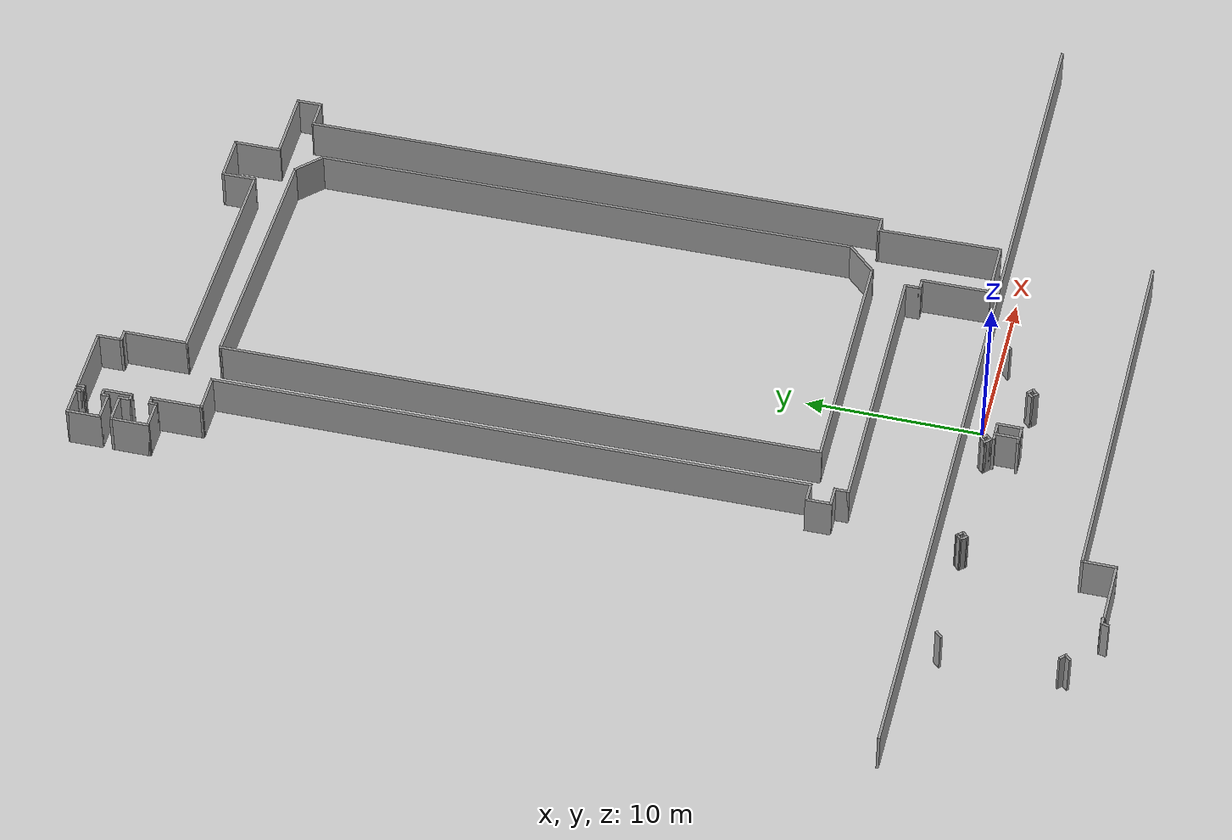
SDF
<sdf version="1.6">
 <world name="default">
  <model name="ground_plane">
   <static>1</static>
   <link name="link">
    <collision name="collision">
     <geometry><plane><normal>0 0 1</normal><size>100 100</size></plane></geometry>
     <surface><friction><ode><mu>100</mu><mu2>50</mu2></ode></friction></surface>
    </collision>
    <visual name="visual">
     <cast_shadows>0</cast_shadows>
     <geometry><plane><normal>0 0 1</normal><size>100 100</size></plane></geometry>
     <material>
      <script><uri>file://media/materials/scripts/gazebo.material</uri><name>Gazebo/Grey</name></script>
     </material>
    </visual>
   </link>
  </model>
  <model name="301_7f_1">
   <pose>1.02031 25.2413 0 0 0 -3.13556</pose>
   <link name="Wall_0">
    <collision name="Wall_0_Collision">
     <geometry><box><size>3.5 0.15 2.5</size></box></geometry>
     <pose>0 0 1.25 0 -0 0</pose>
    </collision>
    <visual name="Wall_0_Visual">
     <pose>0 0 1.25 0 -0 0</pose>
     <geometry><box><size>3.5 0.15 2.5</size></box></geometry>
     <material>
      <script><uri>file://media/materials/scripts/gazebo.material</uri><name>Gazebo/Grey</name></script>
      <ambient>1 1 1 1</ambient>
     </material>
     <meta><layer>0</layer></meta>
    </visual>
    <pose>-9.01493 23.8758 0 0 -0 0</pose>
   </link>
   <link name="Wall_1">
    <collision name="Wall_1_Collision">
     <geometry><box><size>4 0.15 2.5</size></box></geometry>
     <pose>0 0 1.25 0 -0 0</pose>
    </collision>
    <visual name="Wall_1_Visual">
     <pose>0 0 1.25 0 -0 0</pose>
     <geometry><box><size>4 0.15 2.5</size></box></geometry>
     <material>
      <script><uri>file://media/materials/scripts/gazebo.material</uri><name>Gazebo/Grey</name></script>
      <ambient>1 1 1 1</ambient>
     </material>
     <meta><layer>0</layer></meta>
    </visual>
    <pose>-7.33993 21.9508 0 0 -0 -1.5708</pose>
   </link>
   <link name="Wall_10">
    <collision name="Wall_10_Collision">
     <geometry><box><size>34 0.15 2.5</size></box></geometry>
     <pose>0 0 1.25 0 -0 0</pose>
    </collision>
    <visual name="Wall_10_Visual">
     <pose>0 0 1.25 0 -0 0</pose>
     <geometry><box><size>34 0.15 2.5</size></box></geometry>
     <material>
      <script><uri>file://media/materials/scripts/gazebo.material</uri><name>Gazebo/Grey</name></script>
      <ambient>1 1 1 1</ambient>
     </material>
     <meta><layer>0</layer></meta>
    </visual>
    <pose>9.09486 0.148677 0 0 -0 -1.5708</pose>
   </link>
   <link name="Wall_12">
    <collision name="Wall_12_Collision">
     <geometry><box><size>2.25 0.15 2.5</size></box></geometry>
     <pose>0 0 1.25 0 -0 0</pose>
    </collision>
    <visual name="Wall_12_Visual">
     <pose>0 0 1.25 0 -0 0</pose>
     <geometry><box><size>2.25 0.15 2.5</size></box></geometry>
     <material>
      <script><uri>file://media/materials/scripts/gazebo.material</uri><name>Gazebo/Grey</name></script>
      <ambient>1 1 1 1</ambient>
     </material>
     <meta><layer>0</layer></meta>
    </visual>
    <pose>10.1449 -16.7763 0 0 -0 0</pose>
   </link>
   <link name="Wall_13">
    <collision name="Wall_13_Collision">
     <geometry><box><size>3 0.15 2.5</size></box></geometry>
     <pose>0 0 1.25 0 -0 0</pose>
    </collision>
    <visual name="Wall_13_Visual">
     <pose>0 0 1.25 0 -0 0</pose>
     <geometry><box><size>3 0.15 2.5</size></box></geometry>
     <material>
      <script><uri>file://media/materials/scripts/gazebo.material</uri><name>Gazebo/Grey</name></script>
      <ambient>1 1 1 1</ambient>
     </material>
     <meta><layer>0</layer></meta>
    </visual>
    <pose>11.1949 -18.2013 0 0 -0 -1.5708</pose>
   </link>
   <link name="Wall_14">
    <collision name="Wall_14_Collision">
     <geometry><box><size>0.5 0.15 2.5</size></box></geometry>
     <pose>0 0 1.25 0 -0 0</pose>
    </collision>
    <visual name="Wall_14_Visual">
     <pose>0 0 1.25 0 -0 0</pose>
     <geometry><box><size>0.5 0.15 2.5</size></box></geometry>
     <material>
      <script><uri>file://media/materials/scripts/gazebo.material</uri><name>Gazebo/Grey</name></script>
      <ambient>1 1 1 1</ambient>
     </material>
     <meta><layer>0</layer></meta>
    </visual>
    <pose>11.3699 -19.6263 0 0 -0 0</pose>
   </link>
   <link name="Wall_15">
    <collision name="Wall_15_Collision">
     <geometry><box><size>0.5 0.15 2.5</size></box></geometry>
     <pose>0 0 1.25 0 -0 0</pose>
    </collision>
    <visual name="Wall_15_Visual">
     <pose>0 0 1.25 0 -0 0</pose>
     <geometry><box><size>0.5 0.15 2.5</size></box></geometry>
     <material>
      <script><uri>file://media/materials/scripts/gazebo.material</uri><name>Gazebo/Grey</name></script>
      <ambient>1 1 1 1</ambient>
     </material>
     <meta><layer>0</layer></meta>
    </visual>
    <pose>11.5449 -19.4513 0 0 -0 1.5708</pose>
   </link>
   <link name="Wall_16">
    <collision name="Wall_16_Collision">
     <geometry><box><size>1.75 0.15 2.5</size></box></geometry>
     <pose>0 0 1.25 0 -0 0</pose>
    </collision>
    <visual name="Wall_16_Visual">
     <pose>0 0 1.25 0 -0 0</pose>
     <geometry><box><size>1.75 0.15 2.5</size></box></geometry>
     <material>
      <script><uri>file://media/materials/scripts/gazebo.material</uri><name>Gazebo/Grey</name></script>
      <ambient>1 1 1 1</ambient>
     </material>
     <meta><layer>0</layer></meta>
    </visual>
    <pose>12.3449 -19.2763 0 0 -0 0</pose>
   </link>
   <link name="Wall_17">
    <collision name="Wall_17_Collision">
     <geometry><box><size>2.25 0.15 2.5</size></box></geometry>
     <pose>0 0 1.25 0 -0 0</pose>
    </collision>
    <visual name="Wall_17_Visual">
     <pose>0 0 1.25 0 -0 0</pose>
     <geometry><box><size>2.25 0.15 2.5</size></box></geometry>
     <material>
      <script><uri>file://media/materials/scripts/gazebo.material</uri><name>Gazebo/Grey</name></script>
      <ambient>1 1 1 1</ambient>
     </material>
     <meta><layer>0</layer></meta>
    </visual>
    <pose>13.1449 -20.3263 0 0 -0 -1.5708</pose>
   </link>
   <link name="Wall_18">
    <collision name="Wall_18_Collision">
     <geometry><box><size>1.75 0.15 2.5</size></box></geometry>
     <pose>0 0 1.25 0 -0 0</pose>
    </collision>
    <visual name="Wall_18_Visual">
     <pose>0 0 1.25 0 -0 0</pose>
     <geometry><box><size>1.75 0.15 2.5</size></box></geometry>
     <material>
      <script><uri>file://media/materials/scripts/gazebo.material</uri><name>Gazebo/Grey</name></script>
      <ambient>1 1 1 1</ambient>
     </material>
     <meta><layer>0</layer></meta>
    </visual>
    <pose>12.3449 -21.3763 0 0 -0 3.14159</pose>
   </link>
   <link name="Wall_19">
    <collision name="Wall_19_Collision">
     <geometry><box><size>0.75 0.15 2.5</size></box></geometry>
     <pose>0 0 1.25 0 -0 0</pose>
    </collision>
    <visual name="Wall_19_Visual">
     <pose>0 0 1.25 0 -0 0</pose>
     <geometry><box><size>0.75 0.15 2.5</size></box></geometry>
     <material>
      <script><uri>file://media/materials/scripts/gazebo.material</uri><name>Gazebo/Grey</name></script>
      <ambient>1 1 1 1</ambient>
     </material>
     <meta><layer>0</layer></meta>
    </visual>
    <pose>11.5449 -21.0763 0 0 -0 1.5708</pose>
   </link>
   <link name="Wall_2">
    <collision name="Wall_2_Collision">
     <geometry><box><size>0.75 0.15 2.5</size></box></geometry>
     <pose>0 0 1.25 0 -0 0</pose>
    </collision>
    <visual name="Wall_2_Visual">
     <pose>0 0 1.25 0 -0 0</pose>
     <geometry><box><size>0.75 0.15 2.5</size></box></geometry>
     <material>
      <script><uri>file://media/materials/scripts/gazebo.material</uri><name>Gazebo/Grey</name></script>
      <ambient>1 1 1 1</ambient>
     </material>
     <meta><layer>0</layer></meta>
    </visual>
    <pose>-7.03993 20.0258 0 0 -0 0</pose>
   </link>
   <link name="Wall_20">
    <collision name="Wall_20_Collision">
     <geometry><box><size>0.5 0.15 2.5</size></box></geometry>
     <pose>0 0 1.25 0 -0 0</pose>
    </collision>
    <visual name="Wall_20_Visual">
     <pose>0 0 1.25 0 -0 0</pose>
     <geometry><box><size>0.5 0.15 2.5</size></box></geometry>
     <material>
      <script><uri>file://media/materials/scripts/gazebo.material</uri><name>Gazebo/Grey</name></script>
      <ambient>1 1 1 1</ambient>
     </material>
     <meta><layer>0</layer></meta>
    </visual>
    <pose>11.3699 -20.7763 0 0 -0 3.14159</pose>
   </link>
   <link name="Wall_21">
    <collision name="Wall_21_Collision">
     <geometry><box><size>1.75 0.15 2.5</size></box></geometry>
     <pose>0 0 1.25 0 -0 0</pose>
    </collision>
    <visual name="Wall_21_Visual">
     <pose>0 0 1.25 0 -0 0</pose>
     <geometry><box><size>1.75 0.15 2.5</size></box></geometry>
     <material>
      <script><uri>file://media/materials/scripts/gazebo.material</uri><name>Gazebo/Grey</name></script>
      <ambient>1 1 1 1</ambient>
     </material>
     <meta><layer>0</layer></meta>
    </visual>
    <pose>11.1949 -21.5763 0 0 -0 -1.5708</pose>
   </link>
   <link name="Wall_22">
    <collision name="Wall_22_Collision">
     <geometry><box><size>0.5 0.15 2.5</size></box></geometry>
     <pose>0 0 1.25 0 -0 0</pose>
    </collision>
    <visual name="Wall_22_Visual">
     <pose>0 0 1.25 0 -0 0</pose>
     <geometry><box><size>0.5 0.15 2.5</size></box></geometry>
     <material>
      <script><uri>file://media/materials/scripts/gazebo.material</uri><name>Gazebo/Grey</name></script>
      <ambient>1 1 1 1</ambient>
     </material>
     <meta><layer>0</layer></meta>
    </visual>
    <pose>11.3699 -22.3763 0 0 -0 0</pose>
   </link>
   <link name="Wall_23">
    <collision name="Wall_23_Collision">
     <geometry><box><size>0.5 0.15 2.5</size></box></geometry>
     <pose>0 0 1.25 0 -0 0</pose>
    </collision>
    <visual name="Wall_23_Visual">
     <pose>0 0 1.25 0 -0 0</pose>
     <geometry><box><size>0.5 0.15 2.5</size></box></geometry>
     <material>
      <script><uri>file://media/materials/scripts/gazebo.material</uri><name>Gazebo/Grey</name></script>
      <ambient>1 1 1 1</ambient>
     </material>
     <meta><layer>0</layer></meta>
    </visual>
    <pose>11.5449 -22.2013 0 0 -0 1.5708</pose>
   </link>
   <link name="Wall_24">
    <collision name="Wall_24_Collision">
     <geometry><box><size>1.75 0.15 2.5</size></box></geometry>
     <pose>0 0 1.25 0 -0 0</pose>
    </collision>
    <visual name="Wall_24_Visual">
     <pose>0 0 1.25 0 -0 0</pose>
     <geometry><box><size>1.75 0.15 2.5</size></box></geometry>
     <material>
      <script><uri>file://media/materials/scripts/gazebo.material</uri><name>Gazebo/Grey</name></script>
      <ambient>1 1 1 1</ambient>
     </material>
     <meta><layer>0</layer></meta>
    </visual>
    <pose>12.3449 -22.0263 0 0 -0 0</pose>
   </link>
   <link name="Wall_25">
    <collision name="Wall_25_Collision">
     <geometry><box><size>2 0.15 2.5</size></box></geometry>
     <pose>0 0 1.25 0 -0 0</pose>
    </collision>
    <visual name="Wall_25_Visual">
     <pose>0 0 1.25 0 -0 0</pose>
     <geometry><box><size>2 0.15 2.5</size></box></geometry>
     <material>
      <script><uri>file://media/materials/scripts/gazebo.material</uri><name>Gazebo/Grey</name></script>
      <ambient>1 1 1 1</ambient>
     </material>
     <meta><layer>0</layer></meta>
    </visual>
    <pose>13.1449 -22.9513 0 0 -0 -1.5708</pose>
   </link>
   <link name="Wall_26">
    <collision name="Wall_26_Collision">
     <geometry><box><size>1.75 0.15 2.5</size></box></geometry>
     <pose>0 0 1.25 0 -0 0</pose>
    </collision>
    <visual name="Wall_26_Visual">
     <pose>0 0 1.25 0 -0 0</pose>
     <geometry><box><size>1.75 0.15 2.5</size></box></geometry>
     <material>
      <script><uri>file://media/materials/scripts/gazebo.material</uri><name>Gazebo/Grey</name></script>
      <ambient>1 1 1 1</ambient>
     </material>
     <meta><layer>0</layer></meta>
    </visual>
    <pose>12.3449 -23.8763 0 0 -0 3.14159</pose>
   </link>
   <link name="Wall_27">
    <collision name="Wall_27_Collision">
     <geometry><box><size>0.5 0.15 2.5</size></box></geometry>
     <pose>0 0 1.25 0 -0 0</pose>
    </collision>
    <visual name="Wall_27_Visual">
     <pose>0 0 1.25 0 -0 0</pose>
     <geometry><box><size>0.5 0.15 2.5</size></box></geometry>
     <material>
      <script><uri>file://media/materials/scripts/gazebo.material</uri><name>Gazebo/Grey</name></script>
      <ambient>1 1 1 1</ambient>
     </material>
     <meta><layer>0</layer></meta>
    </visual>
    <pose>11.5449 -23.7013 0 0 -0 1.5708</pose>
   </link>
   <link name="Wall_28">
    <collision name="Wall_28_Collision">
     <geometry><box><size>0.5 0.15 2.5</size></box></geometry>
     <pose>0 0 1.25 0 -0 0</pose>
    </collision>
    <visual name="Wall_28_Visual">
     <pose>0 0 1.25 0 -0 0</pose>
     <geometry><box><size>0.5 0.15 2.5</size></box></geometry>
     <material>
      <script><uri>file://media/materials/scripts/gazebo.material</uri><name>Gazebo/Grey</name></script>
      <ambient>1 1 1 1</ambient>
     </material>
     <meta><layer>0</layer></meta>
    </visual>
    <pose>11.3699 -23.5263 0 0 -0 3.14159</pose>
   </link>
   <link name="Wall_29">
    <collision name="Wall_29_Collision">
     <geometry><box><size>0.5 0.15 2.5</size></box></geometry>
     <pose>0 0 1.25 0 -0 0</pose>
    </collision>
    <visual name="Wall_29_Visual">
     <pose>0 0 1.25 0 -0 0</pose>
     <geometry><box><size>0.5 0.15 2.5</size></box></geometry>
     <material>
      <script><uri>file://media/materials/scripts/gazebo.material</uri><name>Gazebo/Grey</name></script>
      <ambient>1 1 1 1</ambient>
     </material>
     <meta><layer>0</layer></meta>
    </visual>
    <pose>11.1949 -23.7013 0 0 -0 -1.5708</pose>
   </link>
   <link name="Wall_3">
    <collision name="Wall_3_Collision">
     <geometry><box><size>1 0.15 2.5</size></box></geometry>
     <pose>0 0 1.25 0 -0 0</pose>
    </collision>
    <visual name="Wall_3_Visual">
     <pose>0 0 1.25 0 -0 0</pose>
     <geometry><box><size>1 0.15 2.5</size></box></geometry>
     <material>
      <script><uri>file://media/materials/scripts/gazebo.material</uri><name>Gazebo/Grey</name></script>
      <ambient>1 1 1 1</ambient>
     </material>
     <meta><layer>0</layer></meta>
    </visual>
    <pose>-6.73993 19.6008 0 0 -0 -1.5708</pose>
   </link>
   <link name="Wall_30">
    <collision name="Wall_30_Collision">
     <geometry><box><size>4 0.15 2.5</size></box></geometry>
     <pose>0 0 1.25 0 -0 0</pose>
    </collision>
    <visual name="Wall_30_Visual">
     <pose>0 0 1.25 0 -0 0</pose>
     <geometry><box><size>4 0.15 2.5</size></box></geometry>
     <material>
      <script><uri>file://media/materials/scripts/gazebo.material</uri><name>Gazebo/Grey</name></script>
      <ambient>1 1 1 1</ambient>
     </material>
     <meta><layer>0</layer></meta>
    </visual>
    <pose>9.26986 -23.8763 0 0 -0 3.14159</pose>
   </link>
   <link name="Wall_31">
    <collision name="Wall_31_Collision">
     <geometry><box><size>1.5 0.15 2.5</size></box></geometry>
     <pose>0 0 1.25 0 -0 0</pose>
    </collision>
    <visual name="Wall_31_Visual">
     <pose>0 0 1.25 0 -0 0</pose>
     <geometry><box><size>1.5 0.15 2.5</size></box></geometry>
     <material>
      <script><uri>file://media/materials/scripts/gazebo.material</uri><name>Gazebo/Grey</name></script>
      <ambient>1 1 1 1</ambient>
     </material>
     <meta><layer>0</layer></meta>
    </visual>
    <pose>7.34486 -23.2013 0 0 -0 1.5708</pose>
   </link>
   <link name="Wall_32">
    <collision name="Wall_32_Collision">
     <geometry><box><size>0.75 0.15 2.5</size></box></geometry>
     <pose>0 0 1.25 0 -0 0</pose>
    </collision>
    <visual name="Wall_32_Visual">
     <pose>0 0 1.25 0 -0 0</pose>
     <geometry><box><size>0.75 0.15 2.5</size></box></geometry>
     <material>
      <script><uri>file://media/materials/scripts/gazebo.material</uri><name>Gazebo/Grey</name></script>
      <ambient>1 1 1 1</ambient>
     </material>
     <meta><layer>0</layer></meta>
    </visual>
    <pose>7.04486 -22.5263 0 0 -0 3.14159</pose>
   </link>
   <link name="Wall_33">
    <collision name="Wall_33_Collision">
     <geometry><box><size>3.75 0.15 2.5</size></box></geometry>
     <pose>0 0 1.25 0 -0 0</pose>
    </collision>
    <visual name="Wall_33_Visual">
     <pose>0 0 1.25 0 -0 0</pose>
     <geometry><box><size>3.75 0.15 2.5</size></box></geometry>
     <material>
      <script><uri>file://media/materials/scripts/gazebo.material</uri><name>Gazebo/Grey</name></script>
      <ambient>1 1 1 1</ambient>
     </material>
     <meta><layer>0</layer></meta>
    </visual>
    <pose>6.74486 -20.7263 0 0 -0 1.5708</pose>
   </link>
   <link name="Wall_34">
    <collision name="Wall_34_Collision">
     <geometry><box><size>13.3413 0.15 2.5</size></box></geometry>
     <pose>0 0 1.25 0 -0 0</pose>
    </collision>
    <visual name="Wall_34_Visual">
     <pose>0 0 1.25 0 -0 0</pose>
     <geometry><box><size>13.3413 0.15 2.5</size></box></geometry>
     <material>
      <script><uri>file://media/materials/scripts/gazebo.material</uri><name>Gazebo/Grey</name></script>
      <ambient>1 1 1 1</ambient>
     </material>
     <meta><layer>0</layer></meta>
    </visual>
    <pose>0.15 -18.8254 0 0 -0 3.12629</pose>
   </link>
   <link name="Wall_36">
    <collision name="Wall_36_Collision">
     <geometry><box><size>2 0.15 2.5</size></box></geometry>
     <pose>0 0 1.25 0 -0 0</pose>
    </collision>
    <visual name="Wall_36_Visual">
     <pose>0 0 1.25 0 -0 0</pose>
     <geometry><box><size>2 0.15 2.5</size></box></geometry>
     <material>
      <script><uri>file://media/materials/scripts/gazebo.material</uri><name>Gazebo/Grey</name></script>
      <ambient>1 1 1 1</ambient>
     </material>
     <meta><layer>0</layer></meta>
    </visual>
    <pose>-6.44486 -19.6495 0 0 -0 -1.5708</pose>
   </link>
   <link name="Wall_37">
    <collision name="Wall_37_Collision">
     <geometry><box><size>2.75 0.15 2.5</size></box></geometry>
     <pose>0 0 1.25 0 -0 0</pose>
    </collision>
    <visual name="Wall_37_Visual">
     <pose>0 0 1.25 0 -0 0</pose>
     <geometry><box><size>2.75 0.15 2.5</size></box></geometry>
     <material>
      <script><uri>file://media/materials/scripts/gazebo.material</uri><name>Gazebo/Grey</name></script>
      <ambient>1 1 1 1</ambient>
     </material>
     <meta><layer>0</layer></meta>
    </visual>
    <pose>-7.74486 -20.5745 0 0 -0 3.14159</pose>
   </link>
   <link name="Wall_38">
    <collision name="Wall_38_Collision">
     <geometry><box><size>2.75 0.15 2.5</size></box></geometry>
     <pose>0 0 1.25 0 -0 0</pose>
    </collision>
    <visual name="Wall_38_Visual">
     <pose>0 0 1.25 0 -0 0</pose>
     <geometry><box><size>2.75 0.15 2.5</size></box></geometry>
     <material>
      <script><uri>file://media/materials/scripts/gazebo.material</uri><name>Gazebo/Grey</name></script>
      <ambient>1 1 1 1</ambient>
     </material>
     <meta><layer>0</layer></meta>
    </visual>
    <pose>-9.04486 -19.2745 0 0 -0 1.5708</pose>
   </link>
   <link name="Wall_39">
    <collision name="Wall_39_Collision">
     <geometry><box><size>4.25 0.15 2.5</size></box></geometry>
     <pose>0 0 1.25 0 -0 0</pose>
    </collision>
    <visual name="Wall_39_Visual">
     <pose>0 0 1.25 0 -0 0</pose>
     <geometry><box><size>4.25 0.15 2.5</size></box></geometry>
     <material>
      <script><uri>file://media/materials/scripts/gazebo.material</uri><name>Gazebo/Grey</name></script>
      <ambient>1 1 1 1</ambient>
     </material>
     <meta><layer>0</layer></meta>
    </visual>
    <pose>-11.0949 -17.9745 0 0 -0 3.14159</pose>
   </link>
   <link name="Wall_4">
    <collision name="Wall_4_Collision">
     <geometry><box><size>16 0.15 2.5</size></box></geometry>
     <pose>0 0 1.25 0 -0 0</pose>
    </collision>
    <visual name="Wall_4_Visual">
     <pose>0 0 1.25 0 -0 0</pose>
     <geometry><box><size>16 0.15 2.5</size></box></geometry>
     <material>
      <script><uri>file://media/materials/scripts/gazebo.material</uri><name>Gazebo/Grey</name></script>
      <ambient>1 1 1 1</ambient>
     </material>
     <meta><layer>0</layer></meta>
    </visual>
    <pose>1.18507 19.1758 0 0 -0 0</pose>
   </link>
   <link name="Wall_40">
    <collision name="Wall_40_Collision">
     <geometry><box><size>1.5 0.15 2.5</size></box></geometry>
     <pose>0 0 1.25 0 -0 0</pose>
    </collision>
    <visual name="Wall_40_Visual">
     <pose>0 0 1.25 0 -0 0</pose>
     <geometry><box><size>1.5 0.15 2.5</size></box></geometry>
     <material>
      <script><uri>file://media/materials/scripts/gazebo.material</uri><name>Gazebo/Grey</name></script>
      <ambient>1 1 1 1</ambient>
     </material>
     <meta><layer>0</layer></meta>
    </visual>
    <pose>-13.1449 -17.2995 0 0 -0 1.5708</pose>
   </link>
   <link name="Wall_41">
    <collision name="Wall_41_Collision">
     <geometry><box><size>1.75 0.15 2.5</size></box></geometry>
     <pose>0 0 1.25 0 -0 0</pose>
    </collision>
    <visual name="Wall_41_Visual">
     <pose>0 0 1.25 0 -0 0</pose>
     <geometry><box><size>1.75 0.15 2.5</size></box></geometry>
     <material>
      <script><uri>file://media/materials/scripts/gazebo.material</uri><name>Gazebo/Grey</name></script>
      <ambient>1 1 1 1</ambient>
     </material>
     <meta><layer>0</layer></meta>
    </visual>
    <pose>-12.3449 -16.6245 0 0 -0 0</pose>
   </link>
   <link name="Wall_42">
    <collision name="Wall_42_Collision">
     <geometry><box><size>33.6472 0.15 2.5</size></box></geometry>
     <pose>0 0 1.25 0 -0 0</pose>
    </collision>
    <visual name="Wall_42_Visual">
     <pose>0 0 1.25 0 -0 0</pose>
     <geometry><box><size>33.6472 0.15 2.5</size></box></geometry>
     <material>
      <script><uri>file://media/materials/scripts/gazebo.material</uri><name>Gazebo/Grey</name></script>
      <ambient>1 1 1 1</ambient>
     </material>
     <meta><layer>0</layer></meta>
    </visual>
    <pose>-11.5163 0.124114 0 0 -0 1.56909</pose>
   </link>
   <link name="Wall_44">
    <collision name="Wall_44_Collision">
     <geometry><box><size>1 0.15 2.5</size></box></geometry>
     <pose>0 0 1.25 0 -0 0</pose>
    </collision>
    <visual name="Wall_44_Visual">
     <pose>0 0 1.25 0 -0 0</pose>
     <geometry><box><size>1 0.15 2.5</size></box></geometry>
     <material>
      <script><uri>file://media/materials/scripts/gazebo.material</uri><name>Gazebo/Grey</name></script>
      <ambient>1 1 1 1</ambient>
     </material>
     <meta><layer>0</layer></meta>
    </visual>
    <pose>-11.0627 16.8727 0 0 -0 0</pose>
   </link>
   <link name="Wall_46">
    <collision name="Wall_46_Collision">
     <geometry><box><size>7.15327 0.15 2.5</size></box></geometry>
     <pose>0 0 1.25 0 -0 0</pose>
    </collision>
    <visual name="Wall_46_Visual">
     <pose>0 0 1.25 0 -0 0</pose>
     <geometry><box><size>7.15327 0.15 2.5</size></box></geometry>
     <material>
      <script><uri>file://media/materials/scripts/gazebo.material</uri><name>Gazebo/Grey</name></script>
      <ambient>1 1 1 1</ambient>
     </material>
     <meta><layer>0</layer></meta>
    </visual>
    <pose>-10.6638 20.3742 0 0 -0 1.57826</pose>
   </link>
   <link name="Wall_48">
    <collision name="Wall_48_Collision">
     <geometry><box><size>2.25 0.15 2.5</size></box></geometry>
     <pose>0 0 1.25 0 -0 0</pose>
    </collision>
    <visual name="Wall_48_Visual">
     <pose>0 0 1.25 0 -0 0</pose>
     <geometry><box><size>2.25 0.15 2.5</size></box></geometry>
     <material>
      <script><uri>file://media/materials/scripts/gazebo.material</uri><name>Gazebo/Grey</name></script>
      <ambient>1 1 1 1</ambient>
     </material>
     <meta><layer>0</layer></meta>
    </visual>
    <pose>-8.21429 16.3704 0 0 -0 0.785398</pose>
   </link>
   <link name="Wall_49">
    <collision name="Wall_49_Collision">
     <geometry><box><size>14.25 0.15 2.5</size></box></geometry>
     <pose>0 0 1.25 0 -0 0</pose>
    </collision>
    <visual name="Wall_49_Visual">
     <pose>0 0 1.25 0 -0 0</pose>
     <geometry><box><size>14.25 0.15 2.5</size></box></geometry>
     <material>
      <script><uri>file://media/materials/scripts/gazebo.material</uri><name>Gazebo/Grey</name></script>
      <ambient>1 1 1 1</ambient>
     </material>
     <meta><layer>0</layer></meta>
    </visual>
    <pose>-0.421827 17.1129 0 0 -0 0</pose>
   </link>
   <link name="Wall_5">
    <collision name="Wall_5_Collision">
     <geometry><box><size>0.902088 0.15 2.5</size></box></geometry>
     <pose>0 0 1.25 0 -0 0</pose>
    </collision>
    <visual name="Wall_5_Visual">
     <pose>0 0 1.25 0 -0 0</pose>
     <geometry><box><size>0.902088 0.15 2.5</size></box></geometry>
     <material>
      <script><uri>file://media/materials/scripts/gazebo.material</uri><name>Gazebo/Grey</name></script>
      <ambient>1 1 1 1</ambient>
     </material>
     <meta><layer>0</layer></meta>
    </visual>
    <pose>9.11007 18.7997 0 0 -0 -1.5708</pose>
   </link>
   <link name="Wall_50">
    <collision name="Wall_50_Collision">
     <geometry><box><size>34.25 0.15 2.5</size></box></geometry>
     <pose>0 0 1.25 0 -0 0</pose>
    </collision>
    <visual name="Wall_50_Visual">
     <pose>0 0 1.25 0 -0 0</pose>
     <geometry><box><size>34.25 0.15 2.5</size></box></geometry>
     <material>
      <script><uri>file://media/materials/scripts/gazebo.material</uri><name>Gazebo/Grey</name></script>
      <ambient>1 1 1 1</ambient>
     </material>
     <meta><layer>0</layer></meta>
    </visual>
    <pose>6.62817 0.062903 0 0 -0 -1.5708</pose>
   </link>
   <link name="Wall_52">
    <collision name="Wall_52_Collision">
     <geometry><box><size>14.4831 0.15 2.5</size></box></geometry>
     <pose>0 0 1.25 0 -0 0</pose>
    </collision>
    <visual name="Wall_52_Visual">
     <pose>0 0 1.25 0 -0 0</pose>
     <geometry><box><size>14.4831 0.15 2.5</size></box></geometry>
     <material>
      <script><uri>file://media/materials/scripts/gazebo.material</uri><name>Gazebo/Grey</name></script>
      <ambient>1 1 1 1</ambient>
     </material>
     <meta><layer>0</layer></meta>
    </visual>
    <pose>-0.536504 -16.8228 0 0 -0 3.11866</pose>
   </link>
   <link name="Wall_53">
    <collision name="Wall_53_Collision">
     <geometry><box><size>2 0.15 2.5</size></box></geometry>
     <pose>0 0 1.25 0 -0 0</pose>
    </collision>
    <visual name="Wall_53_Visual">
     <pose>0 0 1.25 0 -0 0</pose>
     <geometry><box><size>2 0.15 2.5</size></box></geometry>
     <material>
      <script><uri>file://media/materials/scripts/gazebo.material</uri><name>Gazebo/Grey</name></script>
      <ambient>1 1 1 1</ambient>
     </material>
     <meta><layer>0</layer></meta>
    </visual>
    <pose>-8.37459 -16.0044 0 0 -0 2.35619</pose>
   </link>
   <link name="Wall_55">
    <collision name="Wall_55_Collision">
     <geometry><box><size>31.0796 0.15 2.5</size></box></geometry>
     <pose>0 0 1.25 0 -0 0</pose>
    </collision>
    <visual name="Wall_55_Visual">
     <pose>0 0 1.25 0 -0 0</pose>
     <geometry><box><size>31.0796 0.15 2.5</size></box></geometry>
     <material>
      <script><uri>file://media/materials/scripts/gazebo.material</uri><name>Gazebo/Grey</name></script>
      <ambient>1 1 1 1</ambient>
     </material>
     <meta><layer>0</layer></meta>
    </visual>
    <pose>-9.01012 0.114477 0 0 -0 1.5696</pose>
   </link>
   <link name="Wall_6">
    <collision name="Wall_6_Collision">
     <geometry><box><size>1.25 0.15 2.5</size></box></geometry>
     <pose>0 0 1.25 0 -0 0</pose>
    </collision>
    <visual name="Wall_6_Visual">
     <pose>0 0 1.25 0 -0 0</pose>
     <geometry><box><size>1.25 0.15 2.5</size></box></geometry>
     <material>
      <script><uri>file://media/materials/scripts/gazebo.material</uri><name>Gazebo/Grey</name></script>
      <ambient>1 1 1 1</ambient>
     </material>
     <meta><layer>0</layer></meta>
    </visual>
    <pose>9.64486 18.4237 0 0 -0 0</pose>
   </link>
   <link name="Wall_8">
    <collision name="Wall_8_Collision">
     <geometry><box><size>1.5 0.15 2.5</size></box></geometry>
     <pose>0 0 1.25 0 -0 0</pose>
    </collision>
    <visual name="Wall_8_Visual">
     <pose>0 0 1.25 0 -0 0</pose>
     <geometry><box><size>1.5 0.15 2.5</size></box></geometry>
     <material>
      <script><uri>file://media/materials/scripts/gazebo.material</uri><name>Gazebo/Grey</name></script>
      <ambient>1 1 1 1</ambient>
     </material>
     <meta><layer>0</layer></meta>
    </visual>
    <pose>10.1949 17.7487 0 0 -0 -1.5708</pose>
   </link>
   <link name="Wall_9">
    <collision name="Wall_9_Collision">
     <geometry><box><size>1.25 0.15 2.5</size></box></geometry>
     <pose>0 0 1.25 0 -0 0</pose>
    </collision>
    <visual name="Wall_9_Visual">
     <pose>0 0 1.25 0 -0 0</pose>
     <geometry><box><size>1.25 0.15 2.5</size></box></geometry>
     <material>
      <script><uri>file://media/materials/scripts/gazebo.material</uri><name>Gazebo/Grey</name></script>
      <ambient>1 1 1 1</ambient>
     </material>
     <meta><layer>0</layer></meta>
    </visual>
    <pose>9.64486 17.0737 0 0 -0 3.14159</pose>
   </link>
   <static>1</static>
  </model>
  <model name="301_1f_2">
   <pose>0.932725 -1.08367 0 0 -0 0</pose>
   <link name="Wall_149">
    <collision name="Wall_149_Collision">
     <geometry><box><size>0.5 0.15 2.5</size></box></geometry>
     <pose>0 0 1.25 0 -0 0</pose>
    </collision>
    <visual name="Wall_149_Visual">
     <pose>0 0 1.25 0 -0 0</pose>
     <geometry><box><size>0.5 0.15 2.5</size></box></geometry>
     <material>
      <script><uri>file://media/materials/scripts/gazebo.material</uri><name>Gazebo/Grey</name></script>
      <ambient>1 1 1 1</ambient>
     </material>
     <meta><layer>0</layer></meta>
    </visual>
    <pose>3.66994 0.666783 0 0 -0 0.785398</pose>
   </link>
   <link name="Wall_156">
    <collision name="Wall_156_Collision">
     <geometry><box><size>0.5 0.15 2.5</size></box></geometry>
     <pose>0 0 1.25 0 -0 0</pose>
    </collision>
    <visual name="Wall_156_Visual">
     <pose>0 0 1.25 0 -0 0</pose>
     <geometry><box><size>0.5 0.15 2.5</size></box></geometry>
     <material>
      <script><uri>file://media/materials/scripts/gazebo.material</uri><name>Gazebo/Grey</name></script>
      <ambient>1 1 1 1</ambient>
     </material>
     <meta><layer>0</layer></meta>
    </visual>
    <pose>0.418336 -1.16799 0 0 -0 0.785398</pose>
   </link>
   <link name="Wall_157">
    <collision name="Wall_157_Collision">
     <geometry><box><size>0.5 0.15 2.5</size></box></geometry>
     <pose>0 0 1.25 0 -0 0</pose>
    </collision>
    <visual name="Wall_157_Visual">
     <pose>0 0 1.25 0 -0 0</pose>
     <geometry><box><size>0.5 0.15 2.5</size></box></geometry>
     <material>
      <script><uri>file://media/materials/scripts/gazebo.material</uri><name>Gazebo/Grey</name></script>
      <ambient>1 1 1 1</ambient>
     </material>
     <meta><layer>0</layer></meta>
    </visual>
    <pose>0.665823 -1.16799 0 0 -0 -0.785398</pose>
   </link>
   <link name="Wall_158">
    <collision name="Wall_158_Collision">
     <geometry><box><size>0.5 0.15 2.5</size></box></geometry>
     <pose>0 0 1.25 0 -0 0</pose>
    </collision>
    <visual name="Wall_158_Visual">
     <pose>0 0 1.25 0 -0 0</pose>
     <geometry><box><size>0.5 0.15 2.5</size></box></geometry>
     <material>
      <script><uri>file://media/materials/scripts/gazebo.material</uri><name>Gazebo/Grey</name></script>
      <ambient>1 1 1 1</ambient>
     </material>
     <meta><layer>0</layer></meta>
    </visual>
    <pose>0.665823 -1.41548 0 0 -0 -2.35619</pose>
   </link>
   <link name="Wall_159">
    <collision name="Wall_159_Collision">
     <geometry><box><size>0.5 0.15 2.5</size></box></geometry>
     <pose>0 0 1.25 0 -0 0</pose>
    </collision>
    <visual name="Wall_159_Visual">
     <pose>0 0 1.25 0 -0 0</pose>
     <geometry><box><size>0.5 0.15 2.5</size></box></geometry>
     <material>
      <script><uri>file://media/materials/scripts/gazebo.material</uri><name>Gazebo/Grey</name></script>
      <ambient>1 1 1 1</ambient>
     </material>
     <meta><layer>0</layer></meta>
    </visual>
    <pose>0.418336 -1.41548 0 0 -0 2.35619</pose>
   </link>
   <link name="Wall_161">
    <collision name="Wall_161_Collision">
     <geometry><box><size>1.25 0.15 2.5</size></box></geometry>
     <pose>0 0 1.25 0 -0 0</pose>
    </collision>
    <visual name="Wall_161_Visual">
     <pose>0 0 1.25 0 -0 0</pose>
     <geometry><box><size>1.25 0.15 2.5</size></box></geometry>
     <material>
      <script><uri>file://media/materials/scripts/gazebo.material</uri><name>Gazebo/Grey</name></script>
      <ambient>1 1 1 1</ambient>
     </material>
     <meta><layer>0</layer></meta>
    </visual>
    <pose>-2.69477 0.153501 0 0 -0 0</pose>
   </link>
   <link name="Wall_162">
    <collision name="Wall_162_Collision">
     <geometry><box><size>1.5 0.15 2.5</size></box></geometry>
     <pose>0 0 1.25 0 -0 0</pose>
    </collision>
    <visual name="Wall_162_Visual">
     <pose>0 0 1.25 0 -0 0</pose>
     <geometry><box><size>1.5 0.15 2.5</size></box></geometry>
     <material>
      <script><uri>file://media/materials/scripts/gazebo.material</uri><name>Gazebo/Grey</name></script>
      <ambient>1 1 1 1</ambient>
     </material>
     <meta><layer>0</layer></meta>
    </visual>
    <pose>-2.14477 -0.521499 0 0 -0 -1.5708</pose>
   </link>
   <link name="Wall_163">
    <collision name="Wall_163_Collision">
     <geometry><box><size>1.25 0.15 2.5</size></box></geometry>
     <pose>0 0 1.25 0 -0 0</pose>
    </collision>
    <visual name="Wall_163_Visual">
     <pose>0 0 1.25 0 -0 0</pose>
     <geometry><box><size>1.25 0.15 2.5</size></box></geometry>
     <material>
      <script><uri>file://media/materials/scripts/gazebo.material</uri><name>Gazebo/Grey</name></script>
      <ambient>1 1 1 1</ambient>
     </material>
     <meta><layer>0</layer></meta>
    </visual>
    <pose>-2.69477 -1.1965 0 0 -0 3.14159</pose>
   </link>
   <link name="Wall_164">
    <collision name="Wall_164_Collision">
     <geometry><box><size>0.5 0.15 2.5</size></box></geometry>
     <pose>0 0 1.25 0 -0 0</pose>
    </collision>
    <visual name="Wall_164_Visual">
     <pose>0 0 1.25 0 -0 0</pose>
     <geometry><box><size>0.5 0.15 2.5</size></box></geometry>
     <material>
      <script><uri>file://media/materials/scripts/gazebo.material</uri><name>Gazebo/Grey</name></script>
      <ambient>1 1 1 1</ambient>
     </material>
     <meta><layer>0</layer></meta>
    </visual>
    <pose>-3.06977 -1.1965 0 0 -0 0</pose>
   </link>
   <link name="Wall_165">
    <collision name="Wall_165_Collision">
     <geometry><box><size>1.5 0.15 2.5</size></box></geometry>
     <pose>0 0 1.25 0 -0 0</pose>
    </collision>
    <visual name="Wall_165_Visual">
     <pose>0 0 1.25 0 -0 0</pose>
     <geometry><box><size>1.5 0.15 2.5</size></box></geometry>
     <material>
      <script><uri>file://media/materials/scripts/gazebo.material</uri><name>Gazebo/Grey</name></script>
      <ambient>1 1 1 1</ambient>
     </material>
     <meta><layer>0</layer></meta>
    </visual>
    <pose>-2.89477 -0.521499 0 0 -0 1.5708</pose>
   </link>
   <link name="Wall_167">
    <collision name="Wall_167_Collision">
     <geometry><box><size>0.5 0.15 2.5</size></box></geometry>
     <pose>0 0 1.25 0 -0 0</pose>
    </collision>
    <visual name="Wall_167_Visual">
     <pose>0 0 1.25 0 -0 0</pose>
     <geometry><box><size>0.5 0.15 2.5</size></box></geometry>
     <material>
      <script><uri>file://media/materials/scripts/gazebo.material</uri><name>Gazebo/Grey</name></script>
      <ambient>1 1 1 1</ambient>
     </material>
     <meta><layer>0</layer></meta>
    </visual>
    <pose>-3.49561 0.694163 0 0 -0 0.785398</pose>
   </link>
   <link name="Wall_168">
    <collision name="Wall_168_Collision">
     <geometry><box><size>0.5 0.15 2.5</size></box></geometry>
     <pose>0 0 1.25 0 -0 0</pose>
    </collision>
    <visual name="Wall_168_Visual">
     <pose>0 0 1.25 0 -0 0</pose>
     <geometry><box><size>0.5 0.15 2.5</size></box></geometry>
     <material>
      <script><uri>file://media/materials/scripts/gazebo.material</uri><name>Gazebo/Grey</name></script>
      <ambient>1 1 1 1</ambient>
     </material>
     <meta><layer>0</layer></meta>
    </visual>
    <pose>-3.24813 0.694163 0 0 -0 -0.785398</pose>
   </link>
   <link name="Wall_169">
    <collision name="Wall_169_Collision">
     <geometry><box><size>0.5 0.15 2.5</size></box></geometry>
     <pose>0 0 1.25 0 -0 0</pose>
    </collision>
    <visual name="Wall_169_Visual">
     <pose>0 0 1.25 0 -0 0</pose>
     <geometry><box><size>0.5 0.15 2.5</size></box></geometry>
     <material>
      <script><uri>file://media/materials/scripts/gazebo.material</uri><name>Gazebo/Grey</name></script>
      <ambient>1 1 1 1</ambient>
     </material>
     <meta><layer>0</layer></meta>
    </visual>
    <pose>-3.24813 0.446676 0 0 -0 -2.35619</pose>
   </link>
   <link name="Wall_170">
    <collision name="Wall_170_Collision">
     <geometry><box><size>0.5 0.15 2.5</size></box></geometry>
     <pose>0 0 1.25 0 -0 0</pose>
    </collision>
    <visual name="Wall_170_Visual">
     <pose>0 0 1.25 0 -0 0</pose>
     <geometry><box><size>0.5 0.15 2.5</size></box></geometry>
     <material>
      <script><uri>file://media/materials/scripts/gazebo.material</uri><name>Gazebo/Grey</name></script>
      <ambient>1 1 1 1</ambient>
     </material>
     <meta><layer>0</layer></meta>
    </visual>
    <pose>-3.49561 0.446676 0 0 -0 2.35619</pose>
   </link>
   <link name="Wall_172">
    <collision name="Wall_172_Collision">
     <geometry><box><size>0.5 0.15 2.5</size></box></geometry>
     <pose>0 0 1.25 0 -0 0</pose>
    </collision>
    <visual name="Wall_172_Visual">
     <pose>0 0 1.25 0 -0 0</pose>
     <geometry><box><size>0.5 0.15 2.5</size></box></geometry>
     <material>
      <script><uri>file://media/materials/scripts/gazebo.material</uri><name>Gazebo/Grey</name></script>
      <ambient>1 1 1 1</ambient>
     </material>
     <meta><layer>0</layer></meta>
    </visual>
    <pose>-10.7145 0.617181 0 0 -0 0.785398</pose>
   </link>
   <link name="Wall_173">
    <collision name="Wall_173_Collision">
     <geometry><box><size>0.524753 0.15 2.5</size></box></geometry>
     <pose>0 0 1.25 0 -0 0</pose>
    </collision>
    <visual name="Wall_173_Visual">
     <pose>0 0 1.25 0 -0 0</pose>
     <geometry><box><size>0.524753 0.15 2.5</size></box></geometry>
     <material>
      <script><uri>file://media/materials/scripts/gazebo.material</uri><name>Gazebo/Grey</name></script>
      <ambient>1 1 1 1</ambient>
     </material>
     <meta><layer>0</layer></meta>
    </visual>
    <pose>-10.467 0.600221 0 0 -0 -0.849442</pose>
   </link>
   <link name="Wall_176">
    <collision name="Wall_176_Collision">
     <geometry><box><size>0.5 0.15 2.5</size></box></geometry>
     <pose>0 0 1.25 0 -0 0</pose>
    </collision>
    <visual name="Wall_176_Visual">
     <pose>0 0 1.25 0 -0 0</pose>
     <geometry><box><size>0.5 0.15 2.5</size></box></geometry>
     <material>
      <script><uri>file://media/materials/scripts/gazebo.material</uri><name>Gazebo/Grey</name></script>
      <ambient>1 1 1 1</ambient>
     </material>
     <meta><layer>0</layer></meta>
    </visual>
    <pose>-10.467 0.335774 0 0 -0 -2.35619</pose>
   </link>
   <link name="Wall_177">
    <collision name="Wall_177_Collision">
     <geometry><box><size>0.524753 0.15 2.5</size></box></geometry>
     <pose>0 0 1.25 0 -0 0</pose>
    </collision>
    <visual name="Wall_177_Visual">
     <pose>0 0 1.25 0 -0 0</pose>
     <geometry><box><size>0.524753 0.15 2.5</size></box></geometry>
     <material>
      <script><uri>file://media/materials/scripts/gazebo.material</uri><name>Gazebo/Grey</name></script>
      <ambient>1 1 1 1</ambient>
     </material>
     <meta><layer>0</layer></meta>
    </visual>
    <pose>-10.7145 0.352734 0 0 -0 2.29215</pose>
   </link>
   <link name="Wall_181">
    <collision name="Wall_181_Collision">
     <geometry><box><size>0.5 0.15 2.5</size></box></geometry>
     <pose>0 0 1.25 0 -0 0</pose>
    </collision>
    <visual name="Wall_181_Visual">
     <pose>0 0 1.25 0 -0 0</pose>
     <geometry><box><size>0.5 0.15 2.5</size></box></geometry>
     <material>
      <script><uri>file://media/materials/scripts/gazebo.material</uri><name>Gazebo/Grey</name></script>
      <ambient>1 1 1 1</ambient>
     </material>
     <meta><layer>0</layer></meta>
    </visual>
    <pose>-17.6733 0.332697 0 0 -0 -2.35619</pose>
   </link>
   <link name="Wall_185">
    <collision name="Wall_185_Collision">
     <geometry><box><size>0.5 0.15 2.5</size></box></geometry>
     <pose>0 0 1.25 0 -0 0</pose>
    </collision>
    <visual name="Wall_185_Visual">
     <pose>0 0 1.25 0 -0 0</pose>
     <geometry><box><size>0.5 0.15 2.5</size></box></geometry>
     <material>
      <script><uri>file://media/materials/scripts/gazebo.material</uri><name>Gazebo/Grey</name></script>
      <ambient>1 1 1 1</ambient>
     </material>
     <meta><layer>0</layer></meta>
    </visual>
    <pose>-17.606 -6.35033 0 0 -0 -0.785398</pose>
   </link>
   <link name="Wall_186">
    <collision name="Wall_186_Collision">
     <geometry><box><size>0.5 0.15 2.5</size></box></geometry>
     <pose>0 0 1.25 0 -0 0</pose>
    </collision>
    <visual name="Wall_186_Visual">
     <pose>0 0 1.25 0 -0 0</pose>
     <geometry><box><size>0.5 0.15 2.5</size></box></geometry>
     <material>
      <script><uri>file://media/materials/scripts/gazebo.material</uri><name>Gazebo/Grey</name></script>
      <ambient>1 1 1 1</ambient>
     </material>
     <meta><layer>0</layer></meta>
    </visual>
    <pose>-17.606 -6.59782 0 0 -0 -2.35619</pose>
   </link>
   <link name="Wall_24">
    <collision name="Wall_24_Collision">
     <geometry><box><size>0.5 0.15 2.5</size></box></geometry>
     <pose>0 0 1.25 0 -0 0</pose>
    </collision>
    <visual name="Wall_24_Visual">
     <pose>0 0 1.25 0 -0 0</pose>
     <geometry><box><size>0.5 0.15 2.5</size></box></geometry>
     <material>
      <script><uri>file://media/materials/scripts/gazebo.material</uri><name>Gazebo/Grey</name></script>
      <ambient>1 1 1 1</ambient>
     </material>
     <meta><layer>0</layer></meta>
    </visual>
    <pose>-14.9116 -8.11668 0 0 -0 1.309</pose>
   </link>
   <link name="Wall_25">
    <collision name="Wall_25_Collision">
     <geometry><box><size>0.5 0.15 2.5</size></box></geometry>
     <pose>0 0 1.25 0 -0 0</pose>
    </collision>
    <visual name="Wall_25_Visual">
     <pose>0 0 1.25 0 -0 0</pose>
     <geometry><box><size>0.5 0.15 2.5</size></box></geometry>
     <material>
      <script><uri>file://media/materials/scripts/gazebo.material</uri><name>Gazebo/Grey</name></script>
      <ambient>1 1 1 1</ambient>
     </material>
     <meta><layer>0</layer></meta>
    </visual>
    <pose>-14.6913 -7.94764 0 0 -0 0</pose>
   </link>
   <link name="Wall_26">
    <collision name="Wall_26_Collision">
     <geometry><box><size>0.25 0.15 2.5</size></box></geometry>
     <pose>0 0 1.25 0 -0 0</pose>
    </collision>
    <visual name="Wall_26_Visual">
     <pose>0 0 1.25 0 -0 0</pose>
     <geometry><box><size>0.25 0.15 2.5</size></box></geometry>
     <material>
      <script><uri>file://media/materials/scripts/gazebo.material</uri><name>Gazebo/Grey</name></script>
      <ambient>1 1 1 1</ambient>
     </material>
     <meta><layer>0</layer></meta>
    </visual>
    <pose>-14.473 -7.97264 0 0 -0 -0.523599</pose>
   </link>
   <link name="Wall_27">
    <collision name="Wall_27_Collision">
     <geometry><box><size>3.75 0.15 2.5</size></box></geometry>
     <pose>0 0 1.25 0 -0 0</pose>
    </collision>
    <visual name="Wall_27_Visual">
     <pose>0 0 1.25 0 -0 0</pose>
     <geometry><box><size>3.75 0.15 2.5</size></box></geometry>
     <material>
      <script><uri>file://media/materials/scripts/gazebo.material</uri><name>Gazebo/Grey</name></script>
      <ambient>1 1 1 1</ambient>
     </material>
     <meta><layer>0</layer></meta>
    </visual>
    <pose>-12.6297 -7.99764 0 0 -0 0</pose>
   </link>
   <link name="Wall_28">
    <collision name="Wall_28_Collision">
     <geometry><box><size>2 0.15 2.5</size></box></geometry>
     <pose>0 0 1.25 0 -0 0</pose>
    </collision>
    <visual name="Wall_28_Visual">
     <pose>0 0 1.25 0 -0 0</pose>
     <geometry><box><size>2 0.15 2.5</size></box></geometry>
     <material>
      <script><uri>file://media/materials/scripts/gazebo.material</uri><name>Gazebo/Grey</name></script>
      <ambient>1 1 1 1</ambient>
     </material>
     <meta><layer>0</layer></meta>
    </visual>
    <pose>-10.8297 -7.07264 0 0 -0 1.5708</pose>
   </link>
   <link name="Wall_29">
    <collision name="Wall_29_Collision">
     <geometry><box><size>22.25 0.15 2.5</size></box></geometry>
     <pose>0 0 1.25 0 -0 0</pose>
    </collision>
    <visual name="Wall_29_Visual">
     <pose>0 0 1.25 0 -0 0</pose>
     <geometry><box><size>22.25 0.15 2.5</size></box></geometry>
     <material>
      <script><uri>file://media/materials/scripts/gazebo.material</uri><name>Gazebo/Grey</name></script>
      <ambient>1 1 1 1</ambient>
     </material>
     <meta><layer>0</layer></meta>
    </visual>
    <pose>0.220294 -6.14764 0 0 -0 0</pose>
   </link>
   <link name="Wall_90">
    <collision name="Wall_90_Collision">
     <geometry><box><size>52.75 0.15 2.5</size></box></geometry>
     <pose>0 0 1.25 0 -0 0</pose>
    </collision>
    <visual name="Wall_90_Visual">
     <pose>0 0 1.25 0 -0 0</pose>
     <geometry><box><size>52.75 0.15 2.5</size></box></geometry>
     <material>
      <script><uri>file://media/materials/scripts/gazebo.material</uri><name>Gazebo/Grey</name></script>
      <ambient>1 1 1 1</ambient>
     </material>
     <meta><layer>0</layer></meta>
    </visual>
    <pose>1.04458 1.99725 0 0 -0 3.14159</pose>
   </link>
   <static>1</static>
  </model>
  <model name="walls"><static>1</static></model>
 </world>
</sdf>
